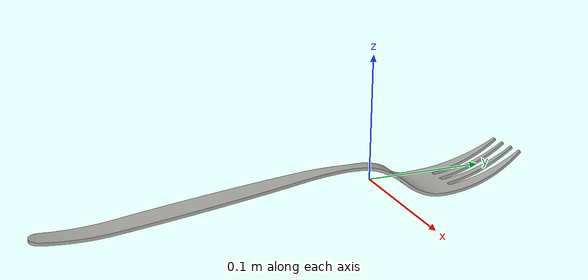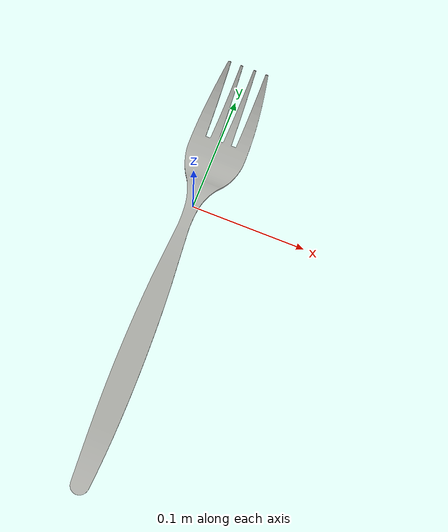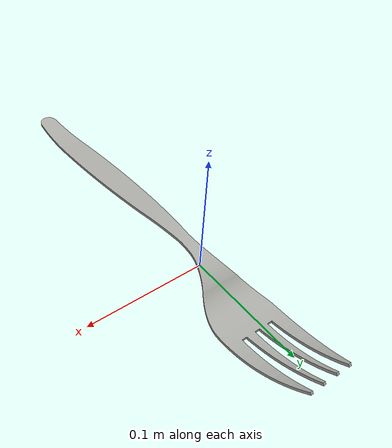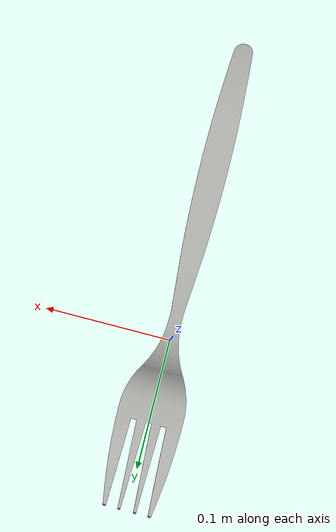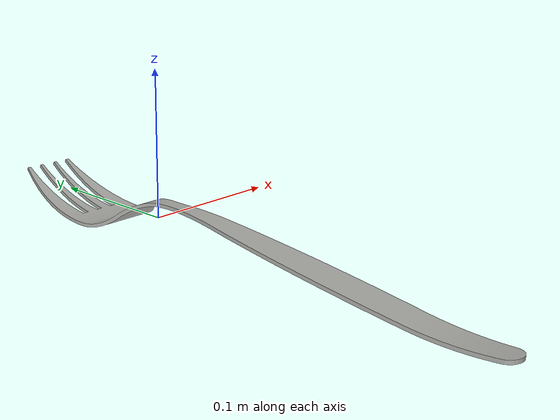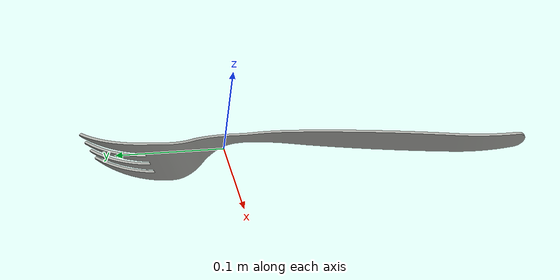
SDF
<?xml version="1.0" encoding="UTF-8"?>
<sdf version="1.6">
    <model name="bowl">
      <gravity>False</gravity>
      <link name="link">
        <gravity>False</gravity>
        <visual name="visual">
          <geometry>
            <mesh>
              <uri>model://fork/fork.dae</uri>
              <scale>2 2 2</scale>
            </mesh>
          </geometry>
        </visual>
        <collision name="collision">
          <geometry>
            <mesh>
              <uri>model://fork/fork.dae</uri>
              <scale>2 2 2</scale>
            </mesh>
          </geometry>
        </collision>
        <inertial>
          <mass>0.1</mass>
          <inertia>
            <ixx>0.0</ixx>
            <iyy>0.0</iyy>
            <izz>0.0</izz>
            <ixy>0.0</ixy>
            <ixz>0.0</ixz>
            <iyz>0.0</iyz>
          </inertia>
        </inertial>
      </link>
    </model>
</sdf>
